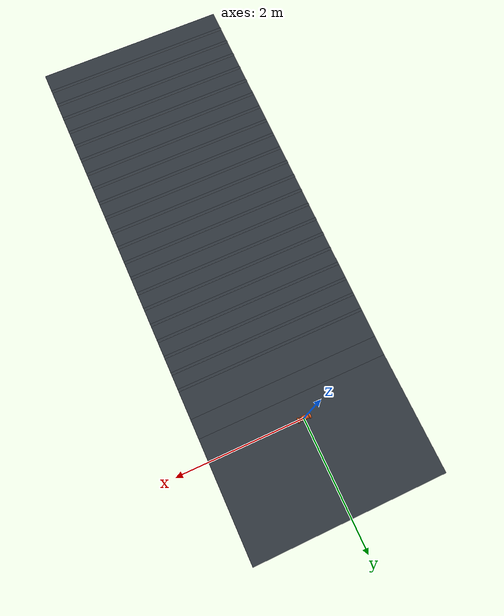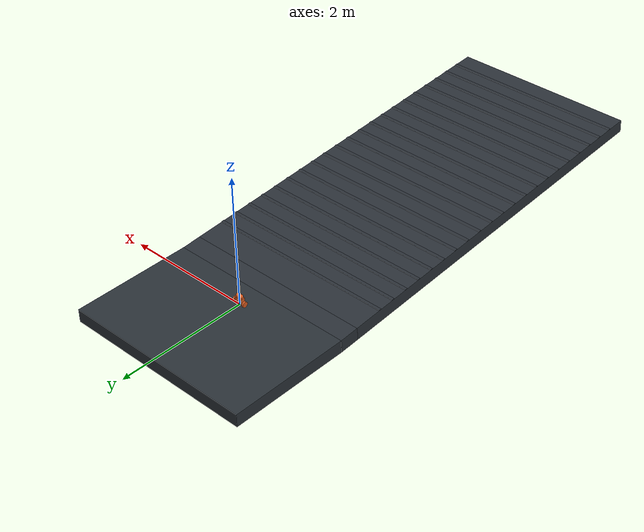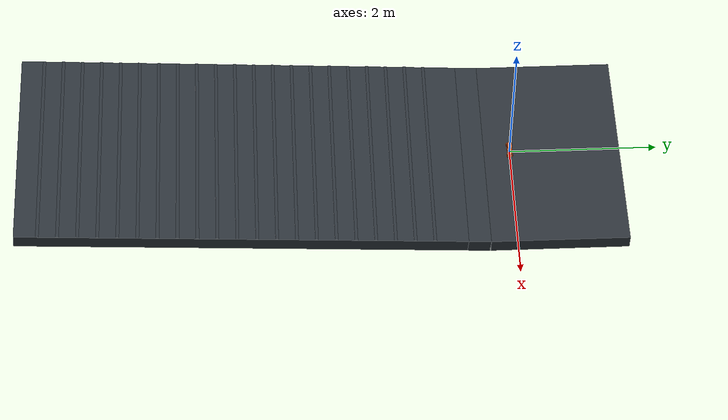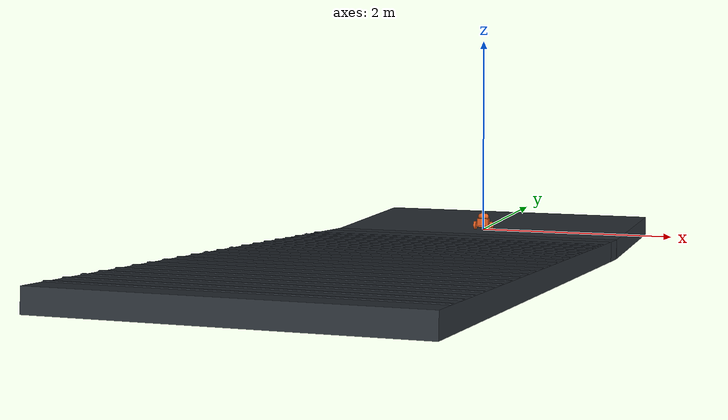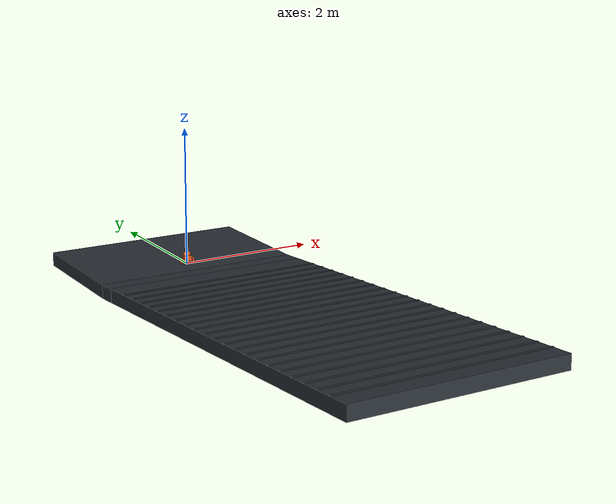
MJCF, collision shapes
<mujoco model="Stage4B rtrain_009_p04p0">
  <compiler angle="radian" meshdir="../../../../assets/upstream_local" />
  <option timestep="0.001" integrator="implicitfast" gravity="0 0 -9.81" />
  <statistic center="0 0 0.05" extent="0.28" />
  <default>
    <default class="visual">
      <geom contype="0" conaffinity="0" group="2" />
    </default>
    <default class="collision">
      <geom group="3" rgba="0.85 0.35 0.12 0.25" solref="0.005 1" solimp="0.9 0.95 0.001" />
    </default>
  </default>
  <asset>
    <texture name="ground_tex" type="2d" builtin="checker" rgb1="0.22 0.25 0.28" rgb2="0.12 0.14 0.16" width="256" height="256" />
    <material name="ground_mat" texture="ground_tex" texrepeat="4 4" reflectance="0.15" />
    <mesh name="main_frame_mesh" file="main_frame.stl" scale="0.001 0.001 0.001" />
    <mesh name="wheel_base_mesh" file="wheel_base.stl" scale="0.001 0.001 0.001" />
    <mesh name="cover_mesh" file="cover.stl" scale="0.001 0.001 0.001" />
    <mesh name="motor_left_mesh" file="motor_left.stl" scale="0.001 0.001 0.001" />
    <mesh name="motor_right_mesh" file="motor_right.stl" scale="0.001 0.001 0.001" />
    <mesh name="mc33926_mesh" file="mc33926.stl" scale="0.001 0.001 0.001" />
    <mesh name="wheel_mesh" file="wheel.stl" scale="0.001 0.001 0.001" />
    <mesh name="adapter_left_mesh" file="adapter_left.stl" scale="0.001 0.001 0.001" />
    <mesh name="adapter_right_mesh" file="adapter_right.stl" scale="0.001 0.001 0.001" />
  </asset>
  <worldbody>
    <light pos="0 -0.5 0.8" dir="0 0.6 -1" diffuse="0.8 0.8 0.8" />
    <geom name="terrain_flat" type="box" pos="0 0.575 -0.1" size="1.5 0.925 0.1" material="ground_mat" friction="0.12237787 0.005 0.0001" condim="3" />
    <geom name="terrain_transition" type="box" pos="0 -0.506610254913 -0.0892929339644" euler="-0.0698131700798 0 0" size="1.5 0.15 0.1" material="ground_mat" friction="0.12237787 0.005 0.0001" condim="3" />
    <geom name="terrain_constant_grade" type="box" pos="0 -3.64893701323 0.13043995833" euler="-0.0698131700798 0 0" size="1.5 3 0.1" material="ground_mat" friction="0.12237787 0.005 0.0001" condim="3" />
    <geom name="terrain_rough_00" type="box" pos="0 -1.09788152316 0.0564862073583" euler="-0.0698131700798 0 0" size="1.5 0.0207251134126 0.00417903196208" material="ground_mat" friction="0.12237787 0.005 0.0001" condim="3" />
    <geom name="terrain_rough_01" type="box" pos="0 -1.35929956594 0.0747663376745" euler="-0.0698131700798 0 0" size="1.5 0.0207251134126 0.00417903196208" material="ground_mat" friction="0.12237787 0.005 0.0001" condim="3" />
    <geom name="terrain_rough_02" type="box" pos="0 -1.62071760872 0.0930464679907" euler="-0.0698131700798 0 0" size="1.5 0.0207251134126 0.00417903196208" material="ground_mat" friction="0.12237787 0.005 0.0001" condim="3" />
    <geom name="terrain_rough_03" type="box" pos="0 -1.8821356515 0.111326598307" euler="-0.0698131700798 0 0" size="1.5 0.0207251134126 0.00417903196208" material="ground_mat" friction="0.12237787 0.005 0.0001" condim="3" />
    <geom name="terrain_rough_04" type="box" pos="0 -2.14355369428 0.129606728623" euler="-0.0698131700798 0 0" size="1.5 0.0207251134126 0.00417903196208" material="ground_mat" friction="0.12237787 0.005 0.0001" condim="3" />
    <geom name="terrain_rough_05" type="box" pos="0 -2.40497173706 0.147886858939" euler="-0.0698131700798 0 0" size="1.5 0.0207251134126 0.00417903196208" material="ground_mat" friction="0.12237787 0.005 0.0001" condim="3" />
    <geom name="terrain_rough_06" type="box" pos="0 -2.66638977985 0.166166989255" euler="-0.0698131700798 0 0" size="1.5 0.0207251134126 0.00417903196208" material="ground_mat" friction="0.12237787 0.005 0.0001" condim="3" />
    <geom name="terrain_rough_07" type="box" pos="0 -2.92780782263 0.184447119571" euler="-0.0698131700798 0 0" size="1.5 0.0207251134126 0.00417903196208" material="ground_mat" friction="0.12237787 0.005 0.0001" condim="3" />
    <geom name="terrain_rough_08" type="box" pos="0 -3.18922586541 0.202727249888" euler="-0.0698131700798 0 0" size="1.5 0.0207251134126 0.00417903196208" material="ground_mat" friction="0.12237787 0.005 0.0001" condim="3" />
    <geom name="terrain_rough_09" type="box" pos="0 -3.45064390819 0.221007380204" euler="-0.0698131700798 0 0" size="1.5 0.0207251134126 0.00417903196208" material="ground_mat" friction="0.12237787 0.005 0.0001" condim="3" />
    <geom name="terrain_rough_10" type="box" pos="0 -3.71206195097 0.23928751052" euler="-0.0698131700798 0 0" size="1.5 0.0207251134126 0.00417903196208" material="ground_mat" friction="0.12237787 0.005 0.0001" condim="3" />
    <geom name="terrain_rough_11" type="box" pos="0 -3.97347999375 0.257567640836" euler="-0.0698131700798 0 0" size="1.5 0.0207251134126 0.00417903196208" material="ground_mat" friction="0.12237787 0.005 0.0001" condim="3" />
    <geom name="terrain_rough_12" type="box" pos="0 -4.23489803653 0.275847771152" euler="-0.0698131700798 0 0" size="1.5 0.0207251134126 0.00417903196208" material="ground_mat" friction="0.12237787 0.005 0.0001" condim="3" />
    <geom name="terrain_rough_13" type="box" pos="0 -4.49631607931 0.294127901468" euler="-0.0698131700798 0 0" size="1.5 0.0207251134126 0.00417903196208" material="ground_mat" friction="0.12237787 0.005 0.0001" condim="3" />
    <geom name="terrain_rough_14" type="box" pos="0 -4.75773412209 0.312408031785" euler="-0.0698131700798 0 0" size="1.5 0.0207251134126 0.00417903196208" material="ground_mat" friction="0.12237787 0.005 0.0001" condim="3" />
    <geom name="terrain_rough_15" type="box" pos="0 -5.01915216487 0.330688162101" euler="-0.0698131700798 0 0" size="1.5 0.0207251134126 0.00417903196208" material="ground_mat" friction="0.12237787 0.005 0.0001" condim="3" />
    <geom name="terrain_rough_16" type="box" pos="0 -5.28057020765 0.348968292417" euler="-0.0698131700798 0 0" size="1.5 0.0207251134126 0.00417903196208" material="ground_mat" friction="0.12237787 0.005 0.0001" condim="3" />
    <geom name="terrain_rough_17" type="box" pos="0 -5.54198825043 0.367248422733" euler="-0.0698131700798 0 0" size="1.5 0.0207251134126 0.00417903196208" material="ground_mat" friction="0.12237787 0.005 0.0001" condim="3" />
    <geom name="terrain_rough_18" type="box" pos="0 -5.80340629321 0.385528553049" euler="-0.0698131700798 0 0" size="1.5 0.0207251134126 0.00417903196208" material="ground_mat" friction="0.12237787 0.005 0.0001" condim="3" />
    <geom name="terrain_rough_19" type="box" pos="0 -6.06482433599 0.403808683365" euler="-0.0698131700798 0 0" size="1.5 0.0207251134126 0.00417903196208" material="ground_mat" friction="0.12237787 0.005 0.0001" condim="3" />
    <geom name="terrain_rough_20" type="box" pos="0 -6.32624237877 0.422088813682" euler="-0.0698131700798 0 0" size="1.5 0.0207251134126 0.00417903196208" material="ground_mat" friction="0.12237787 0.005 0.0001" condim="3" />
    <body name="chassis" pos="0 0 0.043">
      <freejoint name="root" />
      <inertial pos="0.0001592717873 -0.001394466535 0.03368627387" mass="0.8173706489" fullinertia="0.0009508052638 0.001636345835 0.0009938057434 -1.163464906e-07 -4.840496598e-06 3.454944565e-05" />
      <geom name="main_frame_visual" class="visual" type="mesh" mesh="main_frame_mesh" rgba="0.12 0.42 0.72 1" />
      <geom name="wheel_base_visual" class="visual" type="mesh" mesh="wheel_base_mesh" rgba="0.95 0.50 0.10 1" />
      <geom name="cover_visual" class="visual" type="mesh" mesh="cover_mesh" rgba="0.18 0.72 0.32 0.72" />
      <geom name="motor_left_visual" class="visual" type="mesh" mesh="motor_left_mesh" rgba="0.45 0.47 0.50 1" />
      <geom name="motor_right_visual" class="visual" type="mesh" mesh="motor_right_mesh" rgba="0.45 0.47 0.50 1" />
      <geom name="mc33926_visual" class="visual" type="mesh" mesh="mc33926_mesh" rgba="0.08 0.36 0.18 1" />
      <geom name="battery_1_visual" class="visual" type="box" pos="0 -0.012 0.038" size="0.035 0.007 0.025" rgba="0.15 0.25 0.75 1" />
      <geom name="battery_2_visual" class="visual" type="box" pos="0 0.012 0.038" size="0.035 0.007 0.025" rgba="0.15 0.25 0.75 1" />
      <geom name="electronics_lump_visual" class="visual" type="box" pos="0 -0.024 0.067" size="0.035 0.006 0.0425" rgba="0.10 0.42 0.20 0.65" />
      <geom name="wheel_base_collision" class="collision" type="box" pos="0 0.0005 0.0042" size="0.074 0.0201 0.0198" />
      <geom name="lower_chassis_collision" class="collision" type="box" pos="0.001 -0.0015 0.038" size="0.0595 0.0325 0.038" />
      <geom name="upper_chassis_collision" class="collision" type="capsule" fromto="-0.024 -0.0015 0.096 0.026 -0.0015 0.096" size="0.033" />
      <site name="imu_site" type="box" pos="0 0 0.020" quat="1 0 0 0" size="0.004 0.003 0.001" rgba="1 0.15 0.05 1" />
      <body name="left_wheel" pos="-0.0885 0 0">
        <joint name="left_wheel_hinge" type="hinge" axis="1 0 0" damping="0.002" frictionloss="0.002" />
        <inertial pos="0.001407549168 -2.310217342e-08 4.024972882e-05" mass="0.1051" fullinertia="8.559060347e-05 4.760138372e-05 4.763051958e-05 2.677568832e-11 -3.525425309e-08 -1.463149106e-11" />
        <geom name="left_wheel_visual" class="visual" type="mesh" mesh="wheel_mesh" rgba="0.04 0.05 0.06 1" />
        <geom name="left_adapter_visual" class="visual" type="mesh" mesh="adapter_left_mesh" rgba="0.12 0.48 0.82 1" />
        <geom name="left_wheel_collision" class="collision" type="cylinder" size="0.042 0.012" quat="0.7071067812 0 0.7071067812 0" friction="0.12237787 0.005 0.0001" />
      </body>
      <body name="right_wheel" pos="0.0885 0 0">
        <joint name="right_wheel_hinge" type="hinge" axis="1 0 0" damping="0.002" frictionloss="0.002" />
        <inertial pos="-0.001407437868 -2.310217342e-08 -4.019113045e-05" mass="0.1051" fullinertia="8.559060397e-05 4.760141714e-05 4.763055251e-05 -2.601653908e-11 -3.526339188e-08 1.57007511e-11" />
        <geom name="right_wheel_visual" class="visual" type="mesh" mesh="wheel_mesh" rgba="0.04 0.05 0.06 1" />
        <geom name="right_adapter_visual" class="visual" type="mesh" mesh="adapter_right_mesh" rgba="0.12 0.48 0.82 1" />
        <geom name="right_wheel_collision" class="collision" type="cylinder" size="0.042 0.012" quat="0.7071067812 0 0.7071067812 0" friction="0.12237787 0.005 0.0001" />
      </body>
    </body>
  </worldbody>
  <actuator>
    <motor name="left_wheel_torque" joint="left_wheel_hinge" gear="1" ctrllimited="true" ctrlrange="-0.63 0.63" forcelimited="true" forcerange="-0.63 0.63" />
    <motor name="right_wheel_torque" joint="right_wheel_hinge" gear="1" ctrllimited="true" ctrlrange="-0.63 0.63" forcelimited="true" forcerange="-0.63 0.63" />
  </actuator>
  <sensor>
    <accelerometer name="imu_accelerometer" site="imu_site" />
    <gyro name="imu_gyro" site="imu_site" />
    <jointpos name="left_wheel_angle" joint="left_wheel_hinge" />
    <jointpos name="right_wheel_angle" joint="right_wheel_hinge" />
  </sensor>
  <keyframe>
    <key name="upright" qpos="0 0 0.043 1 0 0 0 0 0" />
  </keyframe>
</mujoco>
